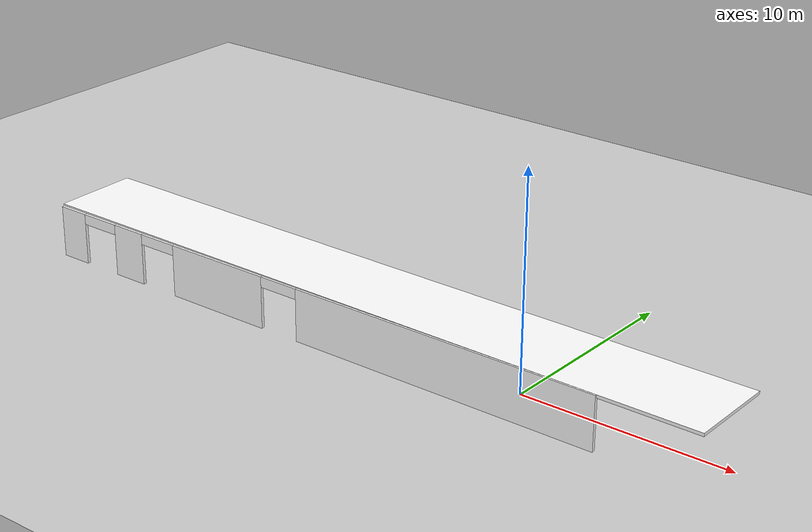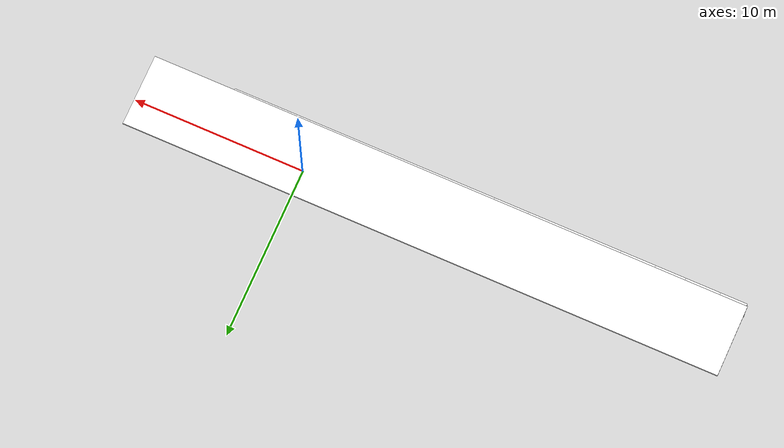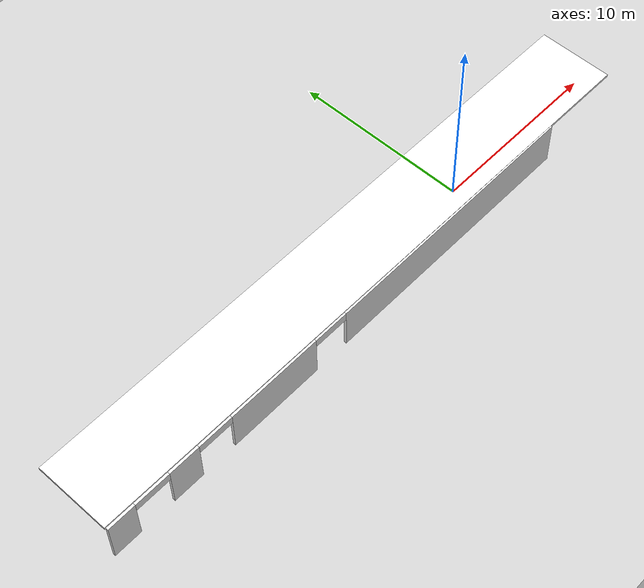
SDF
<sdf version="1.6">
 <world name="default">
  <model name="ground_plane">
   <static>1</static>
   <link name="link">
    <collision name="collision">
     <geometry><plane><normal>0 0 1</normal><size>5000 5000</size></plane></geometry>
     <surface><friction><ode><mu>1</mu><mu2>2</mu2></ode></friction></surface>
    </collision>
    <visual name="runway">
     <cast_shadows>0</cast_shadows>
     <geometry><plane><normal>0 0 1</normal><size>700 700</size></plane></geometry>
     <material>
      <script><uri>file://media/materials/scripts/gazebo.material</uri><name>Gazebo/Gray</name></script>
     </material>
    </visual>
   </link>
  </model>
  <model name="wall_with_door_short">
   <link name="Wall_2">
    <inertial>
     <mass>1</mass>
     <inertia><ixx>1</ixx><ixy>0</ixy><ixz>0</ixz><iyy>1</iyy><iyz>0</iyz><izz>1</izz></inertia>
    </inertial>
    <visual name="Door_2_Visual_0">
     <pose>-33.729 0 2.25 0 -0 0</pose>
     <geometry><box><size>2 0.15 0.5</size></box></geometry>
     <material>
      <script>
       <uri>model://floor/materials/scripts</uri>
       <uri>model://floor/materials/textures</uri>
       <name>floor</name>
      </script>
      <ambient>1 1 1 1</ambient>
      <shader type="vertex"><normal_map>__default__</normal_map></shader>
     </material>
     <meta><layer>0</layer></meta>
    </visual>
    <visual name="Wall_2_Visual_0">
     <pose>-42.3645 0 1.25 0 -0 0</pose>
     <geometry><box><size>15.271 0.15 2.5</size></box></geometry>
     <material>
      <script>
       <uri>model://floor/materials/scripts</uri>
       <uri>model://floor/materials/textures</uri>
       <name>floor</name>
      </script>
      <ambient>1 1 1 1</ambient>
      <shader type="vertex"><normal_map>__default__</normal_map></shader>
     </material>
     <meta><layer>0</layer></meta>
    </visual>
    <visual name="Wall_2_Visual_1">
     <pose>-30.0405 0 1.25 0 -0 0</pose>
     <geometry><box><size>5.377 0.15 2.5</size></box></geometry>
     <material>
      <script>
       <uri>model://floor/materials/scripts</uri>
       <uri>model://floor/materials/textures</uri>
       <name>floor</name>
      </script>
      <ambient>1 1 1 1</ambient>
      <shader type="vertex"><normal_map>__default__</normal_map></shader>
     </material>
     <meta><layer>0</layer></meta>
    </visual>
    <visual name="Door_2_Visual_2">
     <pose>-22.592 0 2.25 0 -0 0</pose>
     <geometry><box><size>2 0.15 0.5</size></box></geometry>
     <material>
      <script>
       <uri>model://floor/materials/scripts</uri>
       <uri>model://floor/materials/textures</uri>
       <name>floor</name>
      </script>
      <ambient>1 1 1 1</ambient>
      <shader type="vertex"><normal_map>__default__</normal_map></shader>
     </material>
     <meta><layer>0</layer></meta>
    </visual>
    <visual name="Door_2_Visual_1">
     <pose>-26.352 0 2.25 0 -0 0</pose>
     <geometry><box><size>2 0.15 0.5</size></box></geometry>
     <material>
      <script>
       <uri>model://floor/materials/scripts</uri>
       <uri>model://floor/materials/textures</uri>
       <name>floor</name>
      </script>
      <ambient>1 1 1 1</ambient>
      <shader type="vertex"><normal_map>__default__</normal_map></shader>
     </material>
     <meta><layer>0</layer></meta>
    </visual>
    <visual name="Wall_2_Visual_2">
     <pose>-24.472 0 1.25 0 -0 0</pose>
     <geometry><box><size>1.76 0.15 2.5</size></box></geometry>
     <material>
      <script>
       <uri>model://floor/materials/scripts</uri>
       <uri>model://floor/materials/textures</uri>
       <name>floor</name>
      </script>
      <ambient>1 1 1 1</ambient>
      <shader type="vertex"><normal_map>__default__</normal_map></shader>
     </material>
     <meta><layer>0</layer></meta>
    </visual>
    <visual name="Wall_2_Visual_3">
     <pose>-20.8175 0 1.25 0 -0 0</pose>
     <geometry><box><size>1.549 0.15 2.5</size></box></geometry>
     <material>
      <script>
       <uri>model://floor/materials/scripts</uri>
       <uri>model://floor/materials/textures</uri>
       <name>floor</name>
      </script>
      <ambient>1 1 1 1</ambient>
      <shader type="vertex"><normal_map>__default__</normal_map></shader>
     </material>
     <meta><layer>0</layer></meta>
    </visual>
    <collision name="Door_2_Collision_6">
     <pose>41.028 0 2.25 0 -0 0</pose>
     <geometry><box><size>2 0.15 0.5</size></box></geometry>
     <surface>
      <friction>
       <ode><mu>1</mu><mu2>1</mu2><fdir1>0 0 0</fdir1><slip1>0</slip1><slip2>0</slip2></ode>
       <torsional>
        <coefficient>1</coefficient>
        <patch_radius>0</patch_radius>
        <surface_radius>0</surface_radius>
        <use_patch_radius>1</use_patch_radius>
        <ode><slip>0</slip></ode>
       </torsional>
      </friction>
      <bounce><restitution_coefficient>0</restitution_coefficient><threshold>1e+06</threshold></bounce>
      <contact>
       <collide_without_contact>0</collide_without_contact>
       <collide_without_contact_bitmask>1</collide_without_contact_bitmask>
       <collide_bitmask>1</collide_bitmask>
       <ode>
        <soft_cfm>0</soft_cfm>
        <soft_erp>0.2</soft_erp>
        <kp>1e+13</kp>
        <kd>1</kd>
        <max_vel>0.01</max_vel>
        <min_depth>0</min_depth>
       </ode>
       <bullet>
        <split_impulse>1</split_impulse>
        <split_impulse_penetration_threshold>-0.01</split_impulse_penetration_threshold>
        <soft_cfm>0</soft_cfm>
        <soft_erp>0.2</soft_erp>
        <kp>1e+13</kp>
        <kd>1</kd>
       </bullet>
      </contact>
     </surface>
    </collision>
    <collision name="Door_2_Collision_8">
     <pose>46.703 0 2.25 0 -0 0</pose>
     <geometry><box><size>2 0.15 0.5</size></box></geometry>
     <surface>
      <friction>
       <ode><mu>1</mu><mu2>1</mu2><fdir1>0 0 0</fdir1><slip1>0</slip1><slip2>0</slip2></ode>
       <torsional>
        <coefficient>1</coefficient>
        <patch_radius>0</patch_radius>
        <surface_radius>0</surface_radius>
        <use_patch_radius>1</use_patch_radius>
        <ode><slip>0</slip></ode>
       </torsional>
      </friction>
      <bounce><restitution_coefficient>0</restitution_coefficient><threshold>1e+06</threshold></bounce>
      <contact>
       <collide_without_contact>0</collide_without_contact>
       <collide_without_contact_bitmask>1</collide_without_contact_bitmask>
       <collide_bitmask>1</collide_bitmask>
       <ode>
        <soft_cfm>0</soft_cfm>
        <soft_erp>0.2</soft_erp>
        <kp>1e+13</kp>
        <kd>1</kd>
        <max_vel>0.01</max_vel>
        <min_depth>0</min_depth>
       </ode>
       <bullet>
        <split_impulse>1</split_impulse>
        <split_impulse_penetration_threshold>-0.01</split_impulse_penetration_threshold>
        <soft_cfm>0</soft_cfm>
        <soft_erp>0.2</soft_erp>
        <kp>1e+13</kp>
        <kd>1</kd>
       </bullet>
      </contact>
     </surface>
    </collision>
    <collision name="Wall_2_Collision_4">
     <pose>2.1425 0 1.25 0 -0 0</pose>
     <geometry><box><size>40.371 0.15 2.5</size></box></geometry>
     <surface>
      <friction>
       <ode><mu>1</mu><mu2>1</mu2><fdir1>0 0 0</fdir1><slip1>0</slip1><slip2>0</slip2></ode>
       <torsional>
        <coefficient>1</coefficient>
        <patch_radius>0</patch_radius>
        <surface_radius>0</surface_radius>
        <use_patch_radius>1</use_patch_radius>
        <ode><slip>0</slip></ode>
       </torsional>
      </friction>
      <bounce><restitution_coefficient>0</restitution_coefficient><threshold>1e+06</threshold></bounce>
      <contact>
       <collide_without_contact>0</collide_without_contact>
       <collide_without_contact_bitmask>1</collide_without_contact_bitmask>
       <collide_bitmask>1</collide_bitmask>
       <ode>
        <soft_cfm>0</soft_cfm>
        <soft_erp>0.2</soft_erp>
        <kp>1e+13</kp>
        <kd>1</kd>
        <max_vel>0.01</max_vel>
        <min_depth>0</min_depth>
       </ode>
       <bullet>
        <split_impulse>1</split_impulse>
        <split_impulse_penetration_threshold>-0.01</split_impulse_penetration_threshold>
        <soft_cfm>0</soft_cfm>
        <soft_erp>0.2</soft_erp>
        <kp>1e+13</kp>
        <kd>1</kd>
       </bullet>
      </contact>
     </surface>
    </collision>
    <collision name="Wall_2_Collision_2">
     <pose>-24.472 0 1.25 0 -0 0</pose>
     <geometry><box><size>1.76 0.15 2.5</size></box></geometry>
     <surface>
      <friction>
       <ode><mu>1</mu><mu2>1</mu2><fdir1>0 0 0</fdir1><slip1>0</slip1><slip2>0</slip2></ode>
       <torsional>
        <coefficient>1</coefficient>
        <patch_radius>0</patch_radius>
        <surface_radius>0</surface_radius>
        <use_patch_radius>1</use_patch_radius>
        <ode><slip>0</slip></ode>
       </torsional>
      </friction>
      <bounce><restitution_coefficient>0</restitution_coefficient><threshold>1e+06</threshold></bounce>
      <contact>
       <collide_without_contact>0</collide_without_contact>
       <collide_without_contact_bitmask>1</collide_without_contact_bitmask>
       <collide_bitmask>1</collide_bitmask>
       <ode>
        <soft_cfm>0</soft_cfm>
        <soft_erp>0.2</soft_erp>
        <kp>1e+13</kp>
        <kd>1</kd>
        <max_vel>0.01</max_vel>
        <min_depth>0</min_depth>
       </ode>
       <bullet>
        <split_impulse>1</split_impulse>
        <split_impulse_penetration_threshold>-0.01</split_impulse_penetration_threshold>
        <soft_cfm>0</soft_cfm>
        <soft_erp>0.2</soft_erp>
        <kp>1e+13</kp>
        <kd>1</kd>
       </bullet>
      </contact>
     </surface>
    </collision>
    <collision name="Wall_2_Collision_5">
     <pose>26.519 0 1.25 0 -0 0</pose>
     <geometry><box><size>4.382 0.15 2.5</size></box></geometry>
     <surface>
      <friction>
       <ode><mu>1</mu><mu2>1</mu2><fdir1>0 0 0</fdir1><slip1>0</slip1><slip2>0</slip2></ode>
       <torsional>
        <coefficient>1</coefficient>
        <patch_radius>0</patch_radius>
        <surface_radius>0</surface_radius>
        <use_patch_radius>1</use_patch_radius>
        <ode><slip>0</slip></ode>
       </torsional>
      </friction>
      <bounce><restitution_coefficient>0</restitution_coefficient><threshold>1e+06</threshold></bounce>
      <contact>
       <collide_without_contact>0</collide_without_contact>
       <collide_without_contact_bitmask>1</collide_without_contact_bitmask>
       <collide_bitmask>1</collide_bitmask>
       <ode>
        <soft_cfm>0</soft_cfm>
        <soft_erp>0.2</soft_erp>
        <kp>1e+13</kp>
        <kd>1</kd>
        <max_vel>0.01</max_vel>
        <min_depth>0</min_depth>
       </ode>
       <bullet>
        <split_impulse>1</split_impulse>
        <split_impulse_penetration_threshold>-0.01</split_impulse_penetration_threshold>
        <soft_cfm>0</soft_cfm>
        <soft_erp>0.2</soft_erp>
        <kp>1e+13</kp>
        <kd>1</kd>
       </bullet>
      </contact>
     </surface>
    </collision>
    <collision name="Door_2_Collision_1">
     <pose>-26.352 0 2.25 0 -0 0</pose>
     <geometry><box><size>2 0.15 0.5</size></box></geometry>
     <surface>
      <friction>
       <ode><mu>1</mu><mu2>1</mu2><fdir1>0 0 0</fdir1><slip1>0</slip1><slip2>0</slip2></ode>
       <torsional>
        <coefficient>1</coefficient>
        <patch_radius>0</patch_radius>
        <surface_radius>0</surface_radius>
        <use_patch_radius>1</use_patch_radius>
        <ode><slip>0</slip></ode>
       </torsional>
      </friction>
      <bounce><restitution_coefficient>0</restitution_coefficient><threshold>1e+06</threshold></bounce>
      <contact>
       <collide_without_contact>0</collide_without_contact>
       <collide_without_contact_bitmask>1</collide_without_contact_bitmask>
       <collide_bitmask>1</collide_bitmask>
       <ode>
        <soft_cfm>0</soft_cfm>
        <soft_erp>0.2</soft_erp>
        <kp>1e+13</kp>
        <kd>1</kd>
        <max_vel>0.01</max_vel>
        <min_depth>0</min_depth>
       </ode>
       <bullet>
        <split_impulse>1</split_impulse>
        <split_impulse_penetration_threshold>-0.01</split_impulse_penetration_threshold>
        <soft_cfm>0</soft_cfm>
        <soft_erp>0.2</soft_erp>
        <kp>1e+13</kp>
        <kd>1</kd>
       </bullet>
      </contact>
     </surface>
    </collision>
    <collision name="Door_2_Collision_2">
     <pose>-22.592 0 2.25 0 -0 0</pose>
     <geometry><box><size>2 0.15 0.5</size></box></geometry>
     <surface>
      <friction>
       <ode><mu>1</mu><mu2>1</mu2><fdir1>0 0 0</fdir1><slip1>0</slip1><slip2>0</slip2></ode>
       <torsional>
        <coefficient>1</coefficient>
        <patch_radius>0</patch_radius>
        <surface_radius>0</surface_radius>
        <use_patch_radius>1</use_patch_radius>
        <ode><slip>0</slip></ode>
       </torsional>
      </friction>
      <bounce><restitution_coefficient>0</restitution_coefficient><threshold>1e+06</threshold></bounce>
      <contact>
       <collide_without_contact>0</collide_without_contact>
       <collide_without_contact_bitmask>1</collide_without_contact_bitmask>
       <collide_bitmask>1</collide_bitmask>
       <ode>
        <soft_cfm>0</soft_cfm>
        <soft_erp>0.2</soft_erp>
        <kp>1e+13</kp>
        <kd>1</kd>
        <max_vel>0.01</max_vel>
        <min_depth>0</min_depth>
       </ode>
       <bullet>
        <split_impulse>1</split_impulse>
        <split_impulse_penetration_threshold>-0.01</split_impulse_penetration_threshold>
        <soft_cfm>0</soft_cfm>
        <soft_erp>0.2</soft_erp>
        <kp>1e+13</kp>
        <kd>1</kd>
       </bullet>
      </contact>
     </surface>
    </collision>
    <collision name="Wall_2_Collision_8">
     <pose>45.239 0 1.25 0 -0 0</pose>
     <geometry><box><size>0.928 0.15 2.5</size></box></geometry>
     <surface>
      <friction>
       <ode><mu>1</mu><mu2>1</mu2><fdir1>0 0 0</fdir1><slip1>0</slip1><slip2>0</slip2></ode>
       <torsional>
        <coefficient>1</coefficient>
        <patch_radius>0</patch_radius>
        <surface_radius>0</surface_radius>
        <use_patch_radius>1</use_patch_radius>
        <ode><slip>0</slip></ode>
       </torsional>
      </friction>
      <bounce><restitution_coefficient>0</restitution_coefficient><threshold>1e+06</threshold></bounce>
      <contact>
       <collide_without_contact>0</collide_without_contact>
       <collide_without_contact_bitmask>1</collide_without_contact_bitmask>
       <collide_bitmask>1</collide_bitmask>
       <ode>
        <soft_cfm>0</soft_cfm>
        <soft_erp>0.2</soft_erp>
        <kp>1e+13</kp>
        <kd>1</kd>
        <max_vel>0.01</max_vel>
        <min_depth>0</min_depth>
       </ode>
       <bullet>
        <split_impulse>1</split_impulse>
        <split_impulse_penetration_threshold>-0.01</split_impulse_penetration_threshold>
        <soft_cfm>0</soft_cfm>
        <soft_erp>0.2</soft_erp>
        <kp>1e+13</kp>
        <kd>1</kd>
       </bullet>
      </contact>
     </surface>
    </collision>
    <collision name="Door_2_Collision_7">
     <pose>43.775 0 2.25 0 -0 0</pose>
     <geometry><box><size>2 0.15 0.5</size></box></geometry>
     <surface>
      <friction>
       <ode><mu>1</mu><mu2>1</mu2><fdir1>0 0 0</fdir1><slip1>0</slip1><slip2>0</slip2></ode>
       <torsional>
        <coefficient>1</coefficient>
        <patch_radius>0</patch_radius>
        <surface_radius>0</surface_radius>
        <use_patch_radius>1</use_patch_radius>
        <ode><slip>0</slip></ode>
       </torsional>
      </friction>
      <bounce><restitution_coefficient>0</restitution_coefficient><threshold>1e+06</threshold></bounce>
      <contact>
       <collide_without_contact>0</collide_without_contact>
       <collide_without_contact_bitmask>1</collide_without_contact_bitmask>
       <collide_bitmask>1</collide_bitmask>
       <ode>
        <soft_cfm>0</soft_cfm>
        <soft_erp>0.2</soft_erp>
        <kp>1e+13</kp>
        <kd>1</kd>
        <max_vel>0.01</max_vel>
        <min_depth>0</min_depth>
       </ode>
       <bullet>
        <split_impulse>1</split_impulse>
        <split_impulse_penetration_threshold>-0.01</split_impulse_penetration_threshold>
        <soft_cfm>0</soft_cfm>
        <soft_erp>0.2</soft_erp>
        <kp>1e+13</kp>
        <kd>1</kd>
       </bullet>
      </contact>
     </surface>
    </collision>
    <collision name="Door_2_Collision_5">
     <pose>29.71 0 2.25 0 -0 0</pose>
     <geometry><box><size>2 0.15 0.5</size></box></geometry>
     <surface>
      <friction>
       <ode><mu>1</mu><mu2>1</mu2><fdir1>0 0 0</fdir1><slip1>0</slip1><slip2>0</slip2></ode>
       <torsional>
        <coefficient>1</coefficient>
        <patch_radius>0</patch_radius>
        <surface_radius>0</surface_radius>
        <use_patch_radius>1</use_patch_radius>
        <ode><slip>0</slip></ode>
       </torsional>
      </friction>
      <bounce><restitution_coefficient>0</restitution_coefficient><threshold>1e+06</threshold></bounce>
      <contact>
       <collide_without_contact>0</collide_without_contact>
       <collide_without_contact_bitmask>1</collide_without_contact_bitmask>
       <collide_bitmask>1</collide_bitmask>
       <ode>
        <soft_cfm>0</soft_cfm>
        <soft_erp>0.2</soft_erp>
        <kp>1e+13</kp>
        <kd>1</kd>
        <max_vel>0.01</max_vel>
        <min_depth>0</min_depth>
       </ode>
       <bullet>
        <split_impulse>1</split_impulse>
        <split_impulse_penetration_threshold>-0.01</split_impulse_penetration_threshold>
        <soft_cfm>0</soft_cfm>
        <soft_erp>0.2</soft_erp>
        <kp>1e+13</kp>
        <kd>1</kd>
       </bullet>
      </contact>
     </surface>
    </collision>
    <collision name="Wall_2_Collision_0">
     <pose>-42.3645 0 1.25 0 -0 0</pose>
     <geometry><box><size>15.271 0.15 2.5</size></box></geometry>
     <surface>
      <friction>
       <ode><mu>1</mu><mu2>1</mu2><fdir1>0 0 0</fdir1><slip1>0</slip1><slip2>0</slip2></ode>
       <torsional>
        <coefficient>1</coefficient>
        <patch_radius>0</patch_radius>
        <surface_radius>0</surface_radius>
        <use_patch_radius>1</use_patch_radius>
        <ode><slip>0</slip></ode>
       </torsional>
      </friction>
      <bounce><restitution_coefficient>0</restitution_coefficient><threshold>1e+06</threshold></bounce>
      <contact>
       <collide_without_contact>0</collide_without_contact>
       <collide_without_contact_bitmask>1</collide_without_contact_bitmask>
       <collide_bitmask>1</collide_bitmask>
       <ode>
        <soft_cfm>0</soft_cfm>
        <soft_erp>0.2</soft_erp>
        <kp>1e+13</kp>
        <kd>1</kd>
        <max_vel>0.01</max_vel>
        <min_depth>0</min_depth>
       </ode>
       <bullet>
        <split_impulse>1</split_impulse>
        <split_impulse_penetration_threshold>-0.01</split_impulse_penetration_threshold>
        <soft_cfm>0</soft_cfm>
        <soft_erp>0.2</soft_erp>
        <kp>1e+13</kp>
        <kd>1</kd>
       </bullet>
      </contact>
     </surface>
    </collision>
    <collision name="Wall_2_Collision_9">
     <pose>50.4005 0 1.25 0 -0 0</pose>
     <geometry><box><size>5.395 0.15 2.5</size></box></geometry>
     <surface>
      <friction>
       <ode><mu>1</mu><mu2>1</mu2><fdir1>0 0 0</fdir1><slip1>0</slip1><slip2>0</slip2></ode>
       <torsional>
        <coefficient>1</coefficient>
        <patch_radius>0</patch_radius>
        <surface_radius>0</surface_radius>
        <use_patch_radius>1</use_patch_radius>
        <ode><slip>0</slip></ode>
       </torsional>
      </friction>
      <bounce><restitution_coefficient>0</restitution_coefficient><threshold>1e+06</threshold></bounce>
      <contact>
       <collide_without_contact>0</collide_without_contact>
       <collide_without_contact_bitmask>1</collide_without_contact_bitmask>
       <collide_bitmask>1</collide_bitmask>
       <ode>
        <soft_cfm>0</soft_cfm>
        <soft_erp>0.2</soft_erp>
        <kp>1e+13</kp>
        <kd>1</kd>
        <max_vel>0.01</max_vel>
        <min_depth>0</min_depth>
       </ode>
       <bullet>
        <split_impulse>1</split_impulse>
        <split_impulse_penetration_threshold>-0.01</split_impulse_penetration_threshold>
        <soft_cfm>0</soft_cfm>
        <soft_erp>0.2</soft_erp>
        <kp>1e+13</kp>
        <kd>1</kd>
       </bullet>
      </contact>
     </surface>
    </collision>
    <collision name="Wall_2_Collision_1">
     <pose>-30.0405 0 1.25 0 -0 0</pose>
     <geometry><box><size>5.377 0.15 2.5</size></box></geometry>
     <surface>
      <friction>
       <ode><mu>1</mu><mu2>1</mu2><fdir1>0 0 0</fdir1><slip1>0</slip1><slip2>0</slip2></ode>
       <torsional>
        <coefficient>1</coefficient>
        <patch_radius>0</patch_radius>
        <surface_radius>0</surface_radius>
        <use_patch_radius>1</use_patch_radius>
        <ode><slip>0</slip></ode>
       </torsional>
      </friction>
      <bounce><restitution_coefficient>0</restitution_coefficient><threshold>1e+06</threshold></bounce>
      <contact>
       <collide_without_contact>0</collide_without_contact>
       <collide_without_contact_bitmask>1</collide_without_contact_bitmask>
       <collide_bitmask>1</collide_bitmask>
       <ode>
        <soft_cfm>0</soft_cfm>
        <soft_erp>0.2</soft_erp>
        <kp>1e+13</kp>
        <kd>1</kd>
        <max_vel>0.01</max_vel>
        <min_depth>0</min_depth>
       </ode>
       <bullet>
        <split_impulse>1</split_impulse>
        <split_impulse_penetration_threshold>-0.01</split_impulse_penetration_threshold>
        <soft_cfm>0</soft_cfm>
        <soft_erp>0.2</soft_erp>
        <kp>1e+13</kp>
        <kd>1</kd>
       </bullet>
      </contact>
     </surface>
    </collision>
    <collision name="Wall_2_Collision_7">
     <pose>42.4015 0 1.25 0 -0 0</pose>
     <geometry><box><size>0.747 0.15 2.5</size></box></geometry>
     <surface>
      <friction>
       <ode><mu>1</mu><mu2>1</mu2><fdir1>0 0 0</fdir1><slip1>0</slip1><slip2>0</slip2></ode>
       <torsional>
        <coefficient>1</coefficient>
        <patch_radius>0</patch_radius>
        <surface_radius>0</surface_radius>
        <use_patch_radius>1</use_patch_radius>
        <ode><slip>0</slip></ode>
       </torsional>
      </friction>
      <bounce><restitution_coefficient>0</restitution_coefficient><threshold>1e+06</threshold></bounce>
      <contact>
       <collide_without_contact>0</collide_without_contact>
       <collide_without_contact_bitmask>1</collide_without_contact_bitmask>
       <collide_bitmask>1</collide_bitmask>
       <ode>
        <soft_cfm>0</soft_cfm>
        <soft_erp>0.2</soft_erp>
        <kp>1e+13</kp>
        <kd>1</kd>
        <max_vel>0.01</max_vel>
        <min_depth>0</min_depth>
       </ode>
       <bullet>
        <split_impulse>1</split_impulse>
        <split_impulse_penetration_threshold>-0.01</split_impulse_penetration_threshold>
        <soft_cfm>0</soft_cfm>
        <soft_erp>0.2</soft_erp>
        <kp>1e+13</kp>
        <kd>1</kd>
       </bullet>
      </contact>
     </surface>
    </collision>
    <collision name="Door_2_Collision_0">
     <pose>-33.729 0 2.25 0 -0 0</pose>
     <geometry><box><size>2 0.15 0.5</size></box></geometry>
     <surface>
      <friction>
       <ode><mu>1</mu><mu2>1</mu2><fdir1>0 0 0</fdir1><slip1>0</slip1><slip2>0</slip2></ode>
       <torsional>
        <coefficient>1</coefficient>
        <patch_radius>0</patch_radius>
        <surface_radius>0</surface_radius>
        <use_patch_radius>1</use_patch_radius>
        <ode><slip>0</slip></ode>
       </torsional>
      </friction>
      <bounce><restitution_coefficient>0</restitution_coefficient><threshold>1e+06</threshold></bounce>
      <contact>
       <collide_without_contact>0</collide_without_contact>
       <collide_without_contact_bitmask>1</collide_without_contact_bitmask>
       <collide_bitmask>1</collide_bitmask>
       <ode>
        <soft_cfm>0</soft_cfm>
        <soft_erp>0.2</soft_erp>
        <kp>1e+13</kp>
        <kd>1</kd>
        <max_vel>0.01</max_vel>
        <min_depth>0</min_depth>
       </ode>
       <bullet>
        <split_impulse>1</split_impulse>
        <split_impulse_penetration_threshold>-0.01</split_impulse_penetration_threshold>
        <soft_cfm>0</soft_cfm>
        <soft_erp>0.2</soft_erp>
        <kp>1e+13</kp>
        <kd>1</kd>
       </bullet>
      </contact>
     </surface>
    </collision>
    <collision name="Door_2_Collision_4">
     <pose>23.328 0 2.25 0 -0 0</pose>
     <geometry><box><size>2 0.15 0.5</size></box></geometry>
     <surface>
      <friction>
       <ode><mu>1</mu><mu2>1</mu2><fdir1>0 0 0</fdir1><slip1>0</slip1><slip2>0</slip2></ode>
       <torsional>
        <coefficient>1</coefficient>
        <patch_radius>0</patch_radius>
        <surface_radius>0</surface_radius>
        <use_patch_radius>1</use_patch_radius>
        <ode><slip>0</slip></ode>
       </torsional>
      </friction>
      <bounce><restitution_coefficient>0</restitution_coefficient><threshold>1e+06</threshold></bounce>
      <contact>
       <collide_without_contact>0</collide_without_contact>
       <collide_without_contact_bitmask>1</collide_without_contact_bitmask>
       <collide_bitmask>1</collide_bitmask>
       <ode>
        <soft_cfm>0</soft_cfm>
        <soft_erp>0.2</soft_erp>
        <kp>1e+13</kp>
        <kd>1</kd>
        <max_vel>0.01</max_vel>
        <min_depth>0</min_depth>
       </ode>
       <bullet>
        <split_impulse>1</split_impulse>
        <split_impulse_penetration_threshold>-0.01</split_impulse_penetration_threshold>
        <soft_cfm>0</soft_cfm>
        <soft_erp>0.2</soft_erp>
        <kp>1e+13</kp>
        <kd>1</kd>
       </bullet>
      </contact>
     </surface>
    </collision>
    <collision name="Wall_2_Collision_6">
     <pose>35.369 0 1.25 0 -0 0</pose>
     <geometry><box><size>9.318 0.15 2.5</size></box></geometry>
     <surface>
      <friction>
       <ode><mu>1</mu><mu2>1</mu2><fdir1>0 0 0</fdir1><slip1>0</slip1><slip2>0</slip2></ode>
       <torsional>
        <coefficient>1</coefficient>
        <patch_radius>0</patch_radius>
        <surface_radius>0</surface_radius>
        <use_patch_radius>1</use_patch_radius>
        <ode><slip>0</slip></ode>
       </torsional>
      </friction>
      <bounce><restitution_coefficient>0</restitution_coefficient><threshold>1e+06</threshold></bounce>
      <contact>
       <collide_without_contact>0</collide_without_contact>
       <collide_without_contact_bitmask>1</collide_without_contact_bitmask>
       <collide_bitmask>1</collide_bitmask>
       <ode>
        <soft_cfm>0</soft_cfm>
        <soft_erp>0.2</soft_erp>
        <kp>1e+13</kp>
        <kd>1</kd>
        <max_vel>0.01</max_vel>
        <min_depth>0</min_depth>
       </ode>
       <bullet>
        <split_impulse>1</split_impulse>
        <split_impulse_penetration_threshold>-0.01</split_impulse_penetration_threshold>
        <soft_cfm>0</soft_cfm>
        <soft_erp>0.2</soft_erp>
        <kp>1e+13</kp>
        <kd>1</kd>
       </bullet>
      </contact>
     </surface>
    </collision>
    <collision name="Wall_2_Collision_3">
     <pose>-20.8175 0 1.25 0 -0 0</pose>
     <geometry><box><size>1.549 0.15 2.5</size></box></geometry>
     <surface>
      <friction>
       <ode><mu>1</mu><mu2>1</mu2><fdir1>0 0 0</fdir1><slip1>0</slip1><slip2>0</slip2></ode>
       <torsional>
        <coefficient>1</coefficient>
        <patch_radius>0</patch_radius>
        <surface_radius>0</surface_radius>
        <use_patch_radius>1</use_patch_radius>
        <ode><slip>0</slip></ode>
       </torsional>
      </friction>
      <bounce><restitution_coefficient>0</restitution_coefficient><threshold>1e+06</threshold></bounce>
      <contact>
       <collide_without_contact>0</collide_without_contact>
       <collide_without_contact_bitmask>1</collide_without_contact_bitmask>
       <collide_bitmask>1</collide_bitmask>
       <ode>
        <soft_cfm>0</soft_cfm>
        <soft_erp>0.2</soft_erp>
        <kp>1e+13</kp>
        <kd>1</kd>
        <max_vel>0.01</max_vel>
        <min_depth>0</min_depth>
       </ode>
       <bullet>
        <split_impulse>1</split_impulse>
        <split_impulse_penetration_threshold>-0.01</split_impulse_penetration_threshold>
        <soft_cfm>0</soft_cfm>
        <soft_erp>0.2</soft_erp>
        <kp>1e+13</kp>
        <kd>1</kd>
       </bullet>
      </contact>
     </surface>
    </collision>
    <collision name="Door_2_Collision_3">
     <pose>-19.043 0 2.25 0 -0 0</pose>
     <geometry><box><size>2 0.15 0.5</size></box></geometry>
     <surface>
      <friction>
       <ode><mu>1</mu><mu2>1</mu2><fdir1>0 0 0</fdir1><slip1>0</slip1><slip2>0</slip2></ode>
       <torsional>
        <coefficient>1</coefficient>
        <patch_radius>0</patch_radius>
        <surface_radius>0</surface_radius>
        <use_patch_radius>1</use_patch_radius>
        <ode><slip>0</slip></ode>
       </torsional>
      </friction>
      <bounce><restitution_coefficient>0</restitution_coefficient><threshold>1e+06</threshold></bounce>
      <contact>
       <collide_without_contact>0</collide_without_contact>
       <collide_without_contact_bitmask>1</collide_without_contact_bitmask>
       <collide_bitmask>1</collide_bitmask>
       <ode>
        <soft_cfm>0</soft_cfm>
        <soft_erp>0.2</soft_erp>
        <kp>1e+13</kp>
        <kd>1</kd>
        <max_vel>0.01</max_vel>
        <min_depth>0</min_depth>
       </ode>
       <bullet>
        <split_impulse>1</split_impulse>
        <split_impulse_penetration_threshold>-0.01</split_impulse_penetration_threshold>
        <soft_cfm>0</soft_cfm>
        <soft_erp>0.2</soft_erp>
        <kp>1e+13</kp>
        <kd>1</kd>
       </bullet>
      </contact>
     </surface>
    </collision>
   </link>
   <static>1</static>
   <pose>-45.0797 -2.19111 0 0 0 -3.13923</pose>
  </model>
  <model name="roof">
   <link name="Wall_0">
    <pose>-1.15603 -0.002112 0.093543 0 -0 0</pose>
    <inertial>
     <inertia><ixx>0</ixx><ixy>0</ixy><ixz>0</ixz><iyy>0</iyy><iyz>0</iyz><izz>0</izz></inertia>
     <mass>0</mass>
    </inertial>
    <visual name="Wall_0_Visual">
     <pose>0 0 1.25 0 -0 0</pose>
     <geometry><box><size>34.7332 0.15 4.14959</size></box></geometry>
     <material>
      <script>
       <uri>model://floor/materials/scripts</uri>
       <uri>model://floor/materials/textures</uri>
       <name>floor</name>
      </script>
      <ambient>1 1 1 1</ambient>
     </material>
     <meta><layer>0</layer></meta>
    </visual>
    <collision name="Wall_0_Collision">
     <pose>0 0 1.25 0 -0 0</pose>
     <geometry><box><size>34.7332 0.15 4.14959</size></box></geometry>
     <surface>
      <friction>
       <ode><mu>1</mu><mu2>1</mu2><fdir1>0 0 0</fdir1><slip1>0</slip1><slip2>0</slip2></ode>
       <torsional>
        <coefficient>1</coefficient>
        <patch_radius>0</patch_radius>
        <surface_radius>0</surface_radius>
        <use_patch_radius>1</use_patch_radius>
        <ode><slip>0</slip></ode>
       </torsional>
      </friction>
      <bounce><restitution_coefficient>0</restitution_coefficient><threshold>1e+06</threshold></bounce>
      <contact>
       <collide_without_contact>0</collide_without_contact>
       <collide_without_contact_bitmask>1</collide_without_contact_bitmask>
       <collide_bitmask>1</collide_bitmask>
       <ode>
        <soft_cfm>0</soft_cfm>
        <soft_erp>0.2</soft_erp>
        <kp>1e+13</kp>
        <kd>1</kd>
        <max_vel>0.01</max_vel>
        <min_depth>0</min_depth>
       </ode>
       <bullet>
        <split_impulse>1</split_impulse>
        <split_impulse_penetration_threshold>-0.01</split_impulse_penetration_threshold>
        <soft_cfm>0</soft_cfm>
        <soft_erp>0.2</soft_erp>
        <kp>1e+13</kp>
        <kd>1</kd>
       </bullet>
      </contact>
     </surface>
    </collision>
   </link>
   <static>1</static>
   <pose>-6.57834 1.34611 2.4982 1.58158 0.0027 0.0002</pose>
  </model>
 </world>
</sdf>
